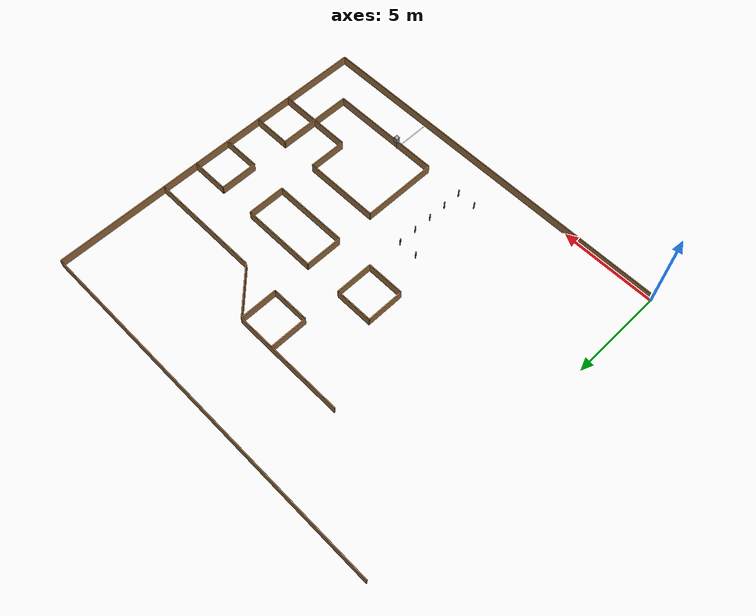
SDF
<sdf version="1.6">
 <world name="default">
  <model name="cylinder_32">
   <pose>10.0 2.0 0.25 0 0 0</pose>
   <link name="link">
    <inertial>
     <mass>1</mass>
     <inertia><ixx>0</ixx><ixy>0</ixy><ixz>0</ixz><iyy>0</iyy><iyz>0</iyz><izz>0</izz></inertia>
    </inertial>
    <collision name="collision">
     <geometry><cylinder><radius>0.03</radius><length>0.5</length></cylinder></geometry>
    </collision>
    <visual name="visual">
     <geometry><cylinder><radius>0.03</radius><length>0.5</length></cylinder></geometry>
     <material>
      <script><name>Gazebo/WoodFloor</name><uri>file://media/materials/scripts/gazebo.material</uri></script>
     </material>
    </visual>
   </link>
   <static>1</static>
  </model>
  <model name="cylinder_31">
   <pose>9.0 2.0 0.25 0 0 0</pose>
   <link name="link">
    <inertial>
     <mass>1</mass>
     <inertia><ixx>0</ixx><ixy>0</ixy><ixz>0</ixz><iyy>0</iyy><iyz>0</iyz><izz>0</izz></inertia>
    </inertial>
    <collision name="collision">
     <geometry><cylinder><radius>0.03</radius><length>0.5</length></cylinder></geometry>
    </collision>
    <visual name="visual">
     <geometry><cylinder><radius>0.03</radius><length>0.5</length></cylinder></geometry>
     <material>
      <script><name>Gazebo/WoodFloor</name><uri>file://media/materials/scripts/gazebo.material</uri></script>
     </material>
    </visual>
   </link>
   <static>1</static>
  </model>
  <model name="cylinder_29">
   <pose>10.0 3.0 0.25 0 0 0</pose>
   <link name="link">
    <inertial>
     <mass>1</mass>
     <inertia><ixx>0</ixx><ixy>0</ixy><ixz>0</ixz><iyy>0</iyy><iyz>0</iyz><izz>0</izz></inertia>
    </inertial>
    <collision name="collision">
     <geometry><cylinder><radius>0.03</radius><length>0.5</length></cylinder></geometry>
    </collision>
    <visual name="visual">
     <geometry><cylinder><radius>0.03</radius><length>0.5</length></cylinder></geometry>
     <material>
      <script><name>Gazebo/WoodFloor</name><uri>file://media/materials/scripts/gazebo.material</uri></script>
     </material>
    </visual>
   </link>
   <static>1</static>
  </model>
  <model name="cylinder_27">
   <pose>10.0 4.0 0.25 0 0 0</pose>
   <link name="link">
    <inertial>
     <mass>1</mass>
     <inertia><ixx>0</ixx><ixy>0</ixy><ixz>0</ixz><iyy>0</iyy><iyz>0</iyz><izz>0</izz></inertia>
    </inertial>
    <collision name="collision">
     <geometry><cylinder><radius>0.03</radius><length>0.5</length></cylinder></geometry>
    </collision>
    <visual name="visual">
     <geometry><cylinder><radius>0.03</radius><length>0.5</length></cylinder></geometry>
     <material>
      <script><name>Gazebo/WoodFloor</name><uri>file://media/materials/scripts/gazebo.material</uri></script>
     </material>
    </visual>
   </link>
   <static>1</static>
  </model>
  <model name="cylinder_24">
   <pose>10.0 4.0 0.25 0 0 0</pose>
   <link name="link">
    <inertial>
     <mass>1</mass>
     <inertia><ixx>0</ixx><ixy>0</ixy><ixz>0</ixz><iyy>0</iyy><iyz>0</iyz><izz>0</izz></inertia>
    </inertial>
    <collision name="collision">
     <geometry><cylinder><radius>0.03</radius><length>0.5</length></cylinder></geometry>
    </collision>
    <visual name="visual">
     <geometry><cylinder><radius>0.03</radius><length>0.5</length></cylinder></geometry>
     <material>
      <script><name>Gazebo/WoodFloor</name><uri>file://media/materials/scripts/gazebo.material</uri></script>
     </material>
    </visual>
   </link>
   <static>1</static>
  </model>
  <model name="cylinder_21">
   <pose>10.0 5.0 0.25 0 0 0</pose>
   <link name="link">
    <inertial>
     <mass>1</mass>
     <inertia><ixx>0</ixx><ixy>0</ixy><ixz>0</ixz><iyy>0</iyy><iyz>0</iyz><izz>0</izz></inertia>
    </inertial>
    <collision name="collision">
     <geometry><cylinder><radius>0.03</radius><length>0.5</length></cylinder></geometry>
    </collision>
    <visual name="visual">
     <geometry><cylinder><radius>0.03</radius><length>0.5</length></cylinder></geometry>
     <material>
      <script><name>Gazebo/WoodFloor</name><uri>file://media/materials/scripts/gazebo.material</uri></script>
     </material>
    </visual>
   </link>
   <static>1</static>
  </model>
  <model name="cylinder_19">
   <pose>10.0 6.0 0.25 0 0 0</pose>
   <link name="link">
    <inertial>
     <mass>1</mass>
     <inertia><ixx>0</ixx><ixy>0</ixy><ixz>0</ixz><iyy>0</iyy><iyz>0</iyz><izz>0</izz></inertia>
    </inertial>
    <collision name="collision">
     <geometry><cylinder><radius>0.03</radius><length>0.5</length></cylinder></geometry>
    </collision>
    <visual name="visual">
     <geometry><cylinder><radius>0.03</radius><length>0.5</length></cylinder></geometry>
     <material>
      <script><name>Gazebo/WoodFloor</name><uri>file://media/materials/scripts/gazebo.material</uri></script>
     </material>
    </visual>
   </link>
   <static>1</static>
  </model>
  <model name="cylinder_18">
   <pose>9.0 6.0 0.25 0 0 0</pose>
   <link name="link">
    <inertial>
     <mass>1</mass>
     <inertia><ixx>0</ixx><ixy>0</ixy><ixz>0</ixz><iyy>0</iyy><iyz>0</iyz><izz>0</izz></inertia>
    </inertial>
    <collision name="collision">
     <geometry><cylinder><radius>0.03</radius><length>0.5</length></cylinder></geometry>
    </collision>
    <visual name="visual">
     <geometry><cylinder><radius>0.03</radius><length>0.5</length></cylinder></geometry>
     <material>
      <script><name>Gazebo/WoodFloor</name><uri>file://media/materials/scripts/gazebo.material</uri></script>
     </material>
    </visual>
   </link>
   <static>1</static>
  </model>
  <model name="box_43">
   <pose>20.0 15.0 0.25 0 0 1.5707963267948966</pose>
   <link name="link">
    <inertial>
     <mass>1</mass>
     <inertia><ixx>0</ixx><ixy>0</ixy><ixz>0</ixz><iyy>0</iyy><iyz>0</iyz><izz>0</izz></inertia>
    </inertial>
    <collision name="collision"><geometry><box><size>6.0 0.05 0.5</size></box></geometry></collision>
    <visual name="visual">
     <geometry><box><size>6.0 0.05 0.5</size></box></geometry>
     <material>
      <script><name>Gazebo/WoodFloor</name><uri>file://media/materials/scripts/gazebo.material</uri></script>
     </material>
    </visual>
   </link>
   <static>1</static>
  </model>
  <model name="box_42">
   <pose>10.0 18.0 0.25 0 0 -3.141592653589793</pose>
   <link name="link">
    <inertial>
     <mass>1</mass>
     <inertia><ixx>0</ixx><ixy>0</ixy><ixz>0</ixz><iyy>0</iyy><iyz>0</iyz><izz>0</izz></inertia>
    </inertial>
    <collision name="collision"><geometry><box><size>20.0 0.05 0.5</size></box></geometry></collision>
    <visual name="visual">
     <geometry><box><size>20.0 0.05 0.5</size></box></geometry>
     <material>
      <script><name>Gazebo/WoodFloor</name><uri>file://media/materials/scripts/gazebo.material</uri></script>
     </material>
    </visual>
   </link>
   <static>1</static>
  </model>
  <model name="box_40">
   <pose>12.0 13.0 0.25 0 0 -1.5707963267948966</pose>
   <link name="link">
    <inertial>
     <mass>1</mass>
     <inertia><ixx>0</ixx><ixy>0</ixy><ixz>0</ixz><iyy>0</iyy><iyz>0</iyz><izz>0</izz></inertia>
    </inertial>
    <collision name="collision"><geometry><box><size>2.0 0.05 0.5</size></box></geometry></collision>
    <visual name="visual">
     <geometry><box><size>2.0 0.05 0.5</size></box></geometry>
     <material>
      <script><name>Gazebo/WoodFloor</name><uri>file://media/materials/scripts/gazebo.material</uri></script>
     </material>
    </visual>
   </link>
   <static>1</static>
  </model>
  <model name="box_39">
   <pose>11.0 12.0 0.25 0 0 -3.141592653589793</pose>
   <link name="link">
    <inertial>
     <mass>1</mass>
     <inertia><ixx>0</ixx><ixy>0</ixy><ixz>0</ixz><iyy>0</iyy><iyz>0</iyz><izz>0</izz></inertia>
    </inertial>
    <collision name="collision"><geometry><box><size>2.0 0.05 0.5</size></box></geometry></collision>
    <visual name="visual">
     <geometry><box><size>2.0 0.05 0.5</size></box></geometry>
     <material>
      <script><name>Gazebo/WoodFloor</name><uri>file://media/materials/scripts/gazebo.material</uri></script>
     </material>
    </visual>
   </link>
   <static>1</static>
  </model>
  <model name="box_38">
   <pose>10.0 13.0 0.25 0 0 1.5707963267948966</pose>
   <link name="link">
    <inertial>
     <mass>1</mass>
     <inertia><ixx>0</ixx><ixy>0</ixy><ixz>0</ixz><iyy>0</iyy><iyz>0</iyz><izz>0</izz></inertia>
    </inertial>
    <collision name="collision"><geometry><box><size>2.0 0.05 0.5</size></box></geometry></collision>
    <visual name="visual">
     <geometry><box><size>2.0 0.05 0.5</size></box></geometry>
     <material>
      <script><name>Gazebo/WoodFloor</name><uri>file://media/materials/scripts/gazebo.material</uri></script>
     </material>
    </visual>
   </link>
   <static>1</static>
  </model>
  <model name="box_25">
   <pose>9.0 10.0 0.25 0 0 -3.141592653589793</pose>
   <link name="link">
    <inertial>
     <mass>1</mass>
     <inertia><ixx>0</ixx><ixy>0</ixy><ixz>0</ixz><iyy>0</iyy><iyz>0</iyz><izz>0</izz></inertia>
    </inertial>
    <collision name="collision"><geometry><box><size>2.0 0.05 0.5</size></box></geometry></collision>
    <visual name="visual">
     <geometry><box><size>2.0 0.05 0.5</size></box></geometry>
     <material>
      <script><name>Gazebo/WoodFloor</name><uri>file://media/materials/scripts/gazebo.material</uri></script>
     </material>
    </visual>
   </link>
   <static>1</static>
  </model>
  <model name="box_24">
   <pose>8.0 9.0 0.25 0 0 -1.5707963267948966</pose>
   <link name="link">
    <inertial>
     <mass>1</mass>
     <inertia><ixx>0</ixx><ixy>0</ixy><ixz>0</ixz><iyy>0</iyy><iyz>0</iyz><izz>0</izz></inertia>
    </inertial>
    <collision name="collision"><geometry><box><size>2.0 0.05 0.5</size></box></geometry></collision>
    <visual name="visual">
     <geometry><box><size>2.0 0.05 0.5</size></box></geometry>
     <material>
      <script><name>Gazebo/WoodFloor</name><uri>file://media/materials/scripts/gazebo.material</uri></script>
     </material>
    </visual>
   </link>
   <static>1</static>
  </model>
  <model name="box_23">
   <pose>9.0 8.0 0.25 0 0 -0.0</pose>
   <link name="link">
    <inertial>
     <mass>1</mass>
     <inertia><ixx>0</ixx><ixy>0</ixy><ixz>0</ixz><iyy>0</iyy><iyz>0</iyz><izz>0</izz></inertia>
    </inertial>
    <collision name="collision"><geometry><box><size>2.0 0.05 0.5</size></box></geometry></collision>
    <visual name="visual">
     <geometry><box><size>2.0 0.05 0.5</size></box></geometry>
     <material>
      <script><name>Gazebo/WoodFloor</name><uri>file://media/materials/scripts/gazebo.material</uri></script>
     </material>
    </visual>
   </link>
   <static>1</static>
  </model>
  <model name="box_22">
   <pose>10.0 9.0 0.25 0 0 1.5707963267948966</pose>
   <link name="link">
    <inertial>
     <mass>1</mass>
     <inertia><ixx>0</ixx><ixy>0</ixy><ixz>0</ixz><iyy>0</iyy><iyz>0</iyz><izz>0</izz></inertia>
    </inertial>
    <collision name="collision"><geometry><box><size>2.0 0.05 0.5</size></box></geometry></collision>
    <visual name="visual">
     <geometry><box><size>2.0 0.05 0.5</size></box></geometry>
     <material>
      <script><name>Gazebo/WoodFloor</name><uri>file://media/materials/scripts/gazebo.material</uri></script>
     </material>
    </visual>
   </link>
   <static>1</static>
  </model>
  <model name="box_21">
   <pose>19.0 8.0 0.25 0 0 -3.141592653589793</pose>
   <link name="link">
    <inertial>
     <mass>1</mass>
     <inertia><ixx>0</ixx><ixy>0</ixy><ixz>0</ixz><iyy>0</iyy><iyz>0</iyz><izz>0</izz></inertia>
    </inertial>
    <collision name="collision"><geometry><box><size>2.0 0.05 0.5</size></box></geometry></collision>
    <visual name="visual">
     <geometry><box><size>2.0 0.05 0.5</size></box></geometry>
     <material>
      <script><name>Gazebo/WoodFloor</name><uri>file://media/materials/scripts/gazebo.material</uri></script>
     </material>
    </visual>
   </link>
   <static>1</static>
  </model>
  <model name="box_20">
   <pose>18.0 9.0 0.25 0 0 1.5707963267948966</pose>
   <link name="link">
    <inertial>
     <mass>1</mass>
     <inertia><ixx>0</ixx><ixy>0</ixy><ixz>0</ixz><iyy>0</iyy><iyz>0</iyz><izz>0</izz></inertia>
    </inertial>
    <collision name="collision"><geometry><box><size>2.0 0.05 0.5</size></box></geometry></collision>
    <visual name="visual">
     <geometry><box><size>2.0 0.05 0.5</size></box></geometry>
     <material>
      <script><name>Gazebo/WoodFloor</name><uri>file://media/materials/scripts/gazebo.material</uri></script>
     </material>
    </visual>
   </link>
   <static>1</static>
  </model>
  <model name="box_19">
   <pose>19.0 10.0 0.25 0 0 -0.0</pose>
   <link name="link">
    <inertial>
     <mass>1</mass>
     <inertia><ixx>0</ixx><ixy>0</ixy><ixz>0</ixz><iyy>0</iyy><iyz>0</iyz><izz>0</izz></inertia>
    </inertial>
    <collision name="collision"><geometry><box><size>2.0 0.05 0.5</size></box></geometry></collision>
    <visual name="visual">
     <geometry><box><size>2.0 0.05 0.5</size></box></geometry>
     <material>
      <script><name>Gazebo/WoodFloor</name><uri>file://media/materials/scripts/gazebo.material</uri></script>
     </material>
    </visual>
   </link>
   <static>1</static>
  </model>
  <model name="box_18">
   <pose>14.0 10.0 0.25 0 0 -0.0</pose>
   <link name="link">
    <inertial>
     <mass>1</mass>
     <inertia><ixx>0</ixx><ixy>0</ixy><ixz>0</ixz><iyy>0</iyy><iyz>0</iyz><izz>0</izz></inertia>
    </inertial>
    <collision name="collision"><geometry><box><size>4.0 0.05 0.5</size></box></geometry></collision>
    <visual name="visual">
     <geometry><box><size>4.0 0.05 0.5</size></box></geometry>
     <material>
      <script><name>Gazebo/WoodFloor</name><uri>file://media/materials/scripts/gazebo.material</uri></script>
     </material>
    </visual>
   </link>
   <static>1</static>
  </model>
  <model name="box_17">
   <pose>16.0 9.0 0.25 0 0 -1.5707963267948966</pose>
   <link name="link">
    <inertial>
     <mass>1</mass>
     <inertia><ixx>0</ixx><ixy>0</ixy><ixz>0</ixz><iyy>0</iyy><iyz>0</iyz><izz>0</izz></inertia>
    </inertial>
    <collision name="collision"><geometry><box><size>2.0 0.05 0.5</size></box></geometry></collision>
    <visual name="visual">
     <geometry><box><size>2.0 0.05 0.5</size></box></geometry>
     <material>
      <script><name>Gazebo/WoodFloor</name><uri>file://media/materials/scripts/gazebo.material</uri></script>
     </material>
    </visual>
   </link>
   <static>1</static>
  </model>
  <model name="box_16">
   <pose>14.0 8.0 0.25 0 0 -3.141592653589793</pose>
   <link name="link">
    <inertial>
     <mass>1</mass>
     <inertia><ixx>0</ixx><ixy>0</ixy><ixz>0</ixz><iyy>0</iyy><iyz>0</iyz><izz>0</izz></inertia>
    </inertial>
    <collision name="collision"><geometry><box><size>4.0 0.05 0.5</size></box></geometry></collision>
    <visual name="visual">
     <geometry><box><size>4.0 0.05 0.5</size></box></geometry>
     <material>
      <script><name>Gazebo/WoodFloor</name><uri>file://media/materials/scripts/gazebo.material</uri></script>
     </material>
    </visual>
   </link>
   <static>1</static>
  </model>
  <model name="box_15">
   <pose>12.0 9.0 0.25 0 0 1.5707963267948966</pose>
   <link name="link">
    <inertial>
     <mass>1</mass>
     <inertia><ixx>0</ixx><ixy>0</ixy><ixz>0</ixz><iyy>0</iyy><iyz>0</iyz><izz>0</izz></inertia>
    </inertial>
    <collision name="collision"><geometry><box><size>2.0 0.05 0.5</size></box></geometry></collision>
    <visual name="visual">
     <geometry><box><size>2.0 0.05 0.5</size></box></geometry>
     <material>
      <script><name>Gazebo/WoodFloor</name><uri>file://media/materials/scripts/gazebo.material</uri></script>
     </material>
    </visual>
   </link>
   <static>1</static>
  </model>
  <model name="box_14">
   <pose>19.0 6.0 0.25 0 0 -3.141592653589793</pose>
   <link name="link">
    <inertial>
     <mass>1</mass>
     <inertia><ixx>0</ixx><ixy>0</ixy><ixz>0</ixz><iyy>0</iyy><iyz>0</iyz><izz>0</izz></inertia>
    </inertial>
    <collision name="collision"><geometry><box><size>2.0 0.05 0.5</size></box></geometry></collision>
    <visual name="visual">
     <geometry><box><size>2.0 0.05 0.5</size></box></geometry>
     <material>
      <script><name>Gazebo/WoodFloor</name><uri>file://media/materials/scripts/gazebo.material</uri></script>
     </material>
    </visual>
   </link>
   <static>1</static>
  </model>
  <model name="box_13">
   <pose>18.0 4.0 0.25 0 0 -1.5707963267948966</pose>
   <link name="link">
    <inertial>
     <mass>1</mass>
     <inertia><ixx>0</ixx><ixy>0</ixy><ixz>0</ixz><iyy>0</iyy><iyz>0</iyz><izz>0</izz></inertia>
    </inertial>
    <collision name="collision"><geometry><box><size>4.0 0.05 0.5</size></box></geometry></collision>
    <visual name="visual">
     <geometry><box><size>4.0 0.05 0.5</size></box></geometry>
     <material>
      <script><name>Gazebo/WoodFloor</name><uri>file://media/materials/scripts/gazebo.material</uri></script>
     </material>
    </visual>
   </link>
   <static>1</static>
  </model>
  <model name="box_12">
   <pose>15.0 2.0 0.25 0 0 -3.141592653589793</pose>
   <link name="link">
    <inertial>
     <mass>1</mass>
     <inertia><ixx>0</ixx><ixy>0</ixy><ixz>0</ixz><iyy>0</iyy><iyz>0</iyz><izz>0</izz></inertia>
    </inertial>
    <collision name="collision"><geometry><box><size>6.0 0.05 0.5</size></box></geometry></collision>
    <visual name="visual">
     <geometry><box><size>6.0 0.05 0.5</size></box></geometry>
     <material>
      <script><name>Gazebo/WoodFloor</name><uri>file://media/materials/scripts/gazebo.material</uri></script>
     </material>
    </visual>
   </link>
   <static>1</static>
  </model>
  <model name="box_11">
   <pose>12.0 4.0 0.25 0 0 1.5707963267948966</pose>
   <link name="link">
    <inertial>
     <mass>1</mass>
     <inertia><ixx>0</ixx><ixy>0</ixy><ixz>0</ixz><iyy>0</iyy><iyz>0</iyz><izz>0</izz></inertia>
    </inertial>
    <collision name="collision"><geometry><box><size>4.0 0.05 0.5</size></box></geometry></collision>
    <visual name="visual">
     <geometry><box><size>4.0 0.05 0.5</size></box></geometry>
     <material>
      <script><name>Gazebo/WoodFloor</name><uri>file://media/materials/scripts/gazebo.material</uri></script>
     </material>
    </visual>
   </link>
   <static>1</static>
  </model>
  <model name="box_10">
   <pose>14.0 6.0 0.25 0 0 -0.0</pose>
   <link name="link">
    <inertial>
     <mass>1</mass>
     <inertia><ixx>0</ixx><ixy>0</ixy><ixz>0</ixz><iyy>0</iyy><iyz>0</iyz><izz>0</izz></inertia>
    </inertial>
    <collision name="collision"><geometry><box><size>4.0 0.05 0.5</size></box></geometry></collision>
    <visual name="visual">
     <geometry><box><size>4.0 0.05 0.5</size></box></geometry>
     <material>
      <script><name>Gazebo/WoodFloor</name><uri>file://media/materials/scripts/gazebo.material</uri></script>
     </material>
    </visual>
   </link>
   <static>1</static>
  </model>
  <model name="box_9">
   <pose>16.0 5.0 0.25 0 0 -1.5707963267948966</pose>
   <link name="link">
    <inertial>
     <mass>1</mass>
     <inertia><ixx>0</ixx><ixy>0</ixy><ixz>0</ixz><iyy>0</iyy><iyz>0</iyz><izz>0</izz></inertia>
    </inertial>
    <collision name="collision"><geometry><box><size>2.0 0.05 0.5</size></box></geometry></collision>
    <visual name="visual">
     <geometry><box><size>2.0 0.05 0.5</size></box></geometry>
     <material>
      <script><name>Gazebo/WoodFloor</name><uri>file://media/materials/scripts/gazebo.material</uri></script>
     </material>
    </visual>
   </link>
   <static>1</static>
  </model>
  <model name="box_8">
   <pose>18.0 4.0 0.25 0 0 -0.0</pose>
   <link name="link">
    <inertial>
     <mass>1</mass>
     <inertia><ixx>0</ixx><ixy>0</ixy><ixz>0</ixz><iyy>0</iyy><iyz>0</iyz><izz>0</izz></inertia>
    </inertial>
    <collision name="collision"><geometry><box><size>4.0 0.05 0.5</size></box></geometry></collision>
    <visual name="visual">
     <geometry><box><size>4.0 0.05 0.5</size></box></geometry>
     <material>
      <script><name>Gazebo/WoodFloor</name><uri>file://media/materials/scripts/gazebo.material</uri></script>
     </material>
    </visual>
   </link>
   <static>1</static>
  </model>
  <model name="box_7">
   <pose>9.0 14.0 0.25 0 0 -0.0</pose>
   <link name="link">
    <inertial>
     <mass>1</mass>
     <inertia><ixx>0</ixx><ixy>0</ixy><ixz>0</ixz><iyy>0</iyy><iyz>0</iyz><izz>0</izz></inertia>
    </inertial>
    <collision name="collision"><geometry><box><size>6.0 0.05 0.5</size></box></geometry></collision>
    <visual name="visual">
     <geometry><box><size>6.0 0.05 0.5</size></box></geometry>
     <material>
      <script><name>Gazebo/WoodFloor</name><uri>file://media/materials/scripts/gazebo.material</uri></script>
     </material>
    </visual>
   </link>
   <static>1</static>
  </model>
  <model name="box_6">
   <pose>13.0 13.0 0.25 0 0 -0.7853981633974483</pose>
   <link name="link">
    <inertial>
     <mass>1</mass>
     <inertia><ixx>0</ixx><ixy>0</ixy><ixz>0</ixz><iyy>0</iyy><iyz>0</iyz><izz>0</izz></inertia>
    </inertial>
    <collision name="collision">
     <geometry><box><size>2.8284271247461903 0.05 0.5</size></box></geometry>
    </collision>
    <visual name="visual">
     <geometry><box><size>2.8284271247461903 0.05 0.5</size></box></geometry>
     <material>
      <script><name>Gazebo/WoodFloor</name><uri>file://media/materials/scripts/gazebo.material</uri></script>
     </material>
    </visual>
   </link>
   <static>1</static>
  </model>
  <model name="box_5">
   <pose>17.0 12.0 0.25 0 0 -0.0</pose>
   <link name="link">
    <inertial>
     <mass>1</mass>
     <inertia><ixx>0</ixx><ixy>0</ixy><ixz>0</ixz><iyy>0</iyy><iyz>0</iyz><izz>0</izz></inertia>
    </inertial>
    <collision name="collision"><geometry><box><size>6.0 0.05 0.5</size></box></geometry></collision>
    <visual name="visual">
     <geometry><box><size>6.0 0.05 0.5</size></box></geometry>
     <material>
      <script><name>Gazebo/WoodFloor</name><uri>file://media/materials/scripts/gazebo.material</uri></script>
     </material>
    </visual>
   </link>
   <static>1</static>
  </model>
  <model name="box_4">
   <pose>20.0 6.0 0.25 0 0 -1.5707963267948966</pose>
   <link name="link">
    <inertial>
     <mass>1</mass>
     <inertia><ixx>0</ixx><ixy>0</ixy><ixz>0</ixz><iyy>0</iyy><iyz>0</iyz><izz>0</izz></inertia>
    </inertial>
    <collision name="collision"><geometry><box><size>12.0 0.05 0.5</size></box></geometry></collision>
    <visual name="visual">
     <geometry><box><size>12.0 0.05 0.5</size></box></geometry>
     <material>
      <script><name>Gazebo/WoodFloor</name><uri>file://media/materials/scripts/gazebo.material</uri></script>
     </material>
    </visual>
   </link>
   <static>1</static>
  </model>
  <model name="box_3">
   <pose>10.0 0.0 0.25 0 0 -3.141592653589793</pose>
   <link name="link">
    <inertial>
     <mass>1</mass>
     <inertia><ixx>0</ixx><ixy>0</ixy><ixz>0</ixz><iyy>0</iyy><iyz>0</iyz><izz>0</izz></inertia>
    </inertial>
    <collision name="collision"><geometry><box><size>20.0 0.05 0.5</size></box></geometry></collision>
    <visual name="visual">
     <geometry><box><size>20.0 0.05 0.5</size></box></geometry>
     <material>
      <script><name>Gazebo/WoodFloor</name><uri>file://media/materials/scripts/gazebo.material</uri></script>
     </material>
    </visual>
   </link>
   <static>1</static>
  </model>
  <model name="tl_line_1">
   <static>1</static>
   <pose>14.14 1.0 0.001 0 0 1.5707963267948966</pose>
   <link name="link">
    <collision name="collision">
     <geometry><plane><normal>0 0 1</normal><size>2.0 0.05</size></plane></geometry>
     <surface><friction><ode><mu>100</mu><mu2>50</mu2></ode></friction></surface>
    </collision>
    <visual name="visual">
     <geometry><plane><normal>0 0 1</normal><size>2.0 0.05</size></plane></geometry>
     <material>
      <script><name>Gazebo/White</name><uri>file://media/materials/scripts/gazebo.material</uri></script>
     </material>
    </visual>
   </link>
  </model>
  <include>
   <uri>model://traffic-light</uri>
   <name>traffic_light_0</name>
   <pose>14.14 2.0600000000000005 0 0 0 1.5707963267948966</pose>
  </include>
 </world>
</sdf>
